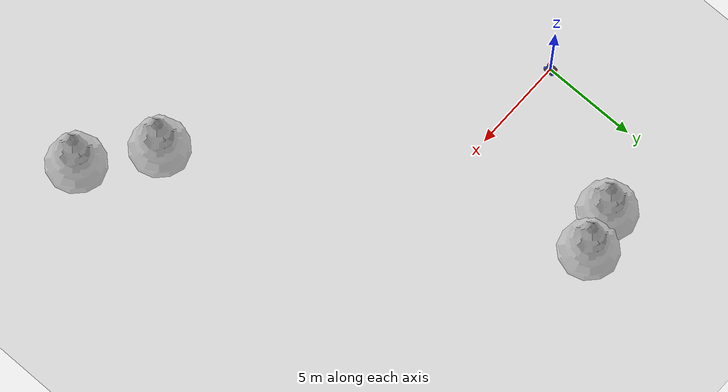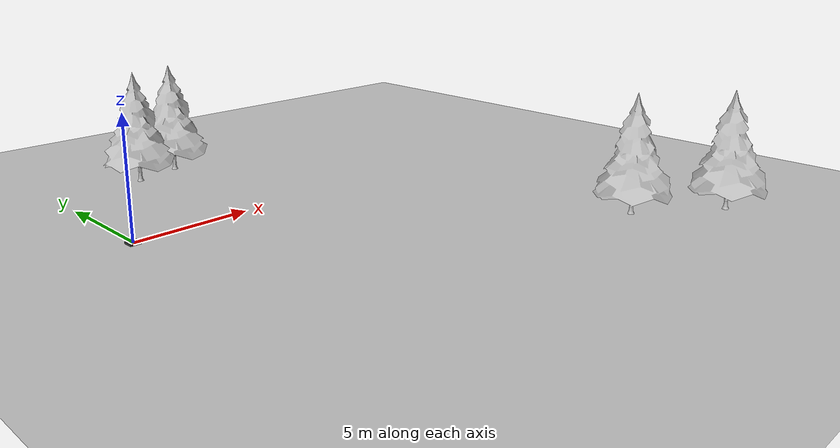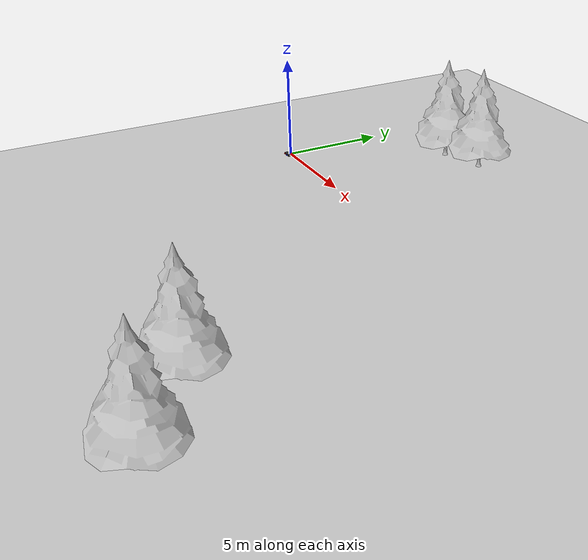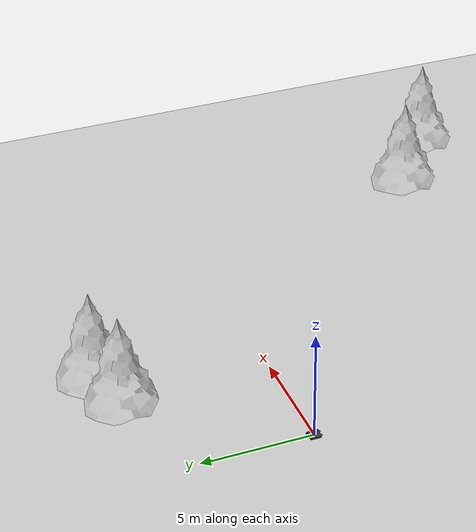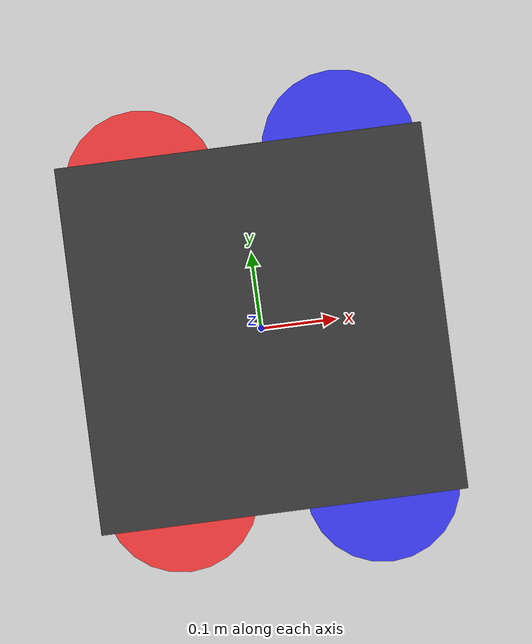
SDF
<sdf version="1.4">
 <world name="vrc_task_1">
  <scene><ambient>0.4 0.4 0.4 1</ambient><background>0.7 0.7 0.7 1</background><shadows>1</shadows></scene>
  <physics name="default_physics" default="0" type="ode">
   <gravity>0 0 -9.8066</gravity>
   <ode>
    <solver>
     <type>quick</type>
     <iters>10</iters>
     <sor>1.0</sor>
     <use_dynamic_moi_rescaling>0</use_dynamic_moi_rescaling>
    </solver>
    <constraints>
     <cfm>0</cfm>
     <erp>0.2</erp>
     <contact_max_correcting_vel>100</contact_max_correcting_vel>
     <contact_surface_layer>0.001</contact_surface_layer>
    </constraints>
   </ode>
   <max_step_size>0.004</max_step_size>
   <real_time_factor>1</real_time_factor>
   <real_time_update_rate>250</real_time_update_rate>
   <magnetic_field>6e-06 2.3e-05 -4.2e-05</magnetic_field>
  </physics>
  <light name="sun" type="directional">
   <pose>0 0 10 0 0 0</pose>
   <diffuse>0.8 0.8 0.8 1</diffuse>
   <specular>0.2 0.2 0.2 1</specular>
   <attenuation>
    <range>1000</range>
    <constant>0.9</constant>
    <linear>0.01</linear>
    <quadratic>0.001</quadratic>
   </attenuation>
   <direction>-0.5 0.1 -0.9</direction>
  </light>
  <include><uri>model://drone_center_groundplane</uri></include>
  <include><name>pine_tree_1</name><uri>model://pine_tree</uri><pose>4 7 0   0 0 0</pose></include>
  <include><name>pine_tree_2</name><uri>model://pine_tree</uri><pose>6.1 7.6 0   0 0 0</pose></include>
  <include><name>pine_tree_3</name><uri>model://pine_tree</uri><pose>19.3 -14 0   0 0 0</pose></include>
  <include><name>pine_tree_4</name><uri>model://pine_tree</uri><pose>16 -11.5 0  0 0 0</pose></include>
  <include><name>irirs_obs_avoid</name><uri>model://iris_stereo_camera</uri></include>
 </world>
</sdf>

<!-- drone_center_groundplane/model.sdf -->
<sdf version="1.4">
   <model name="drone_center_groundplane">
      <static>true</static>
      <link name="link">
         <collision name="collision">
            <geometry>
               <plane>
                  <normal>0 0 1</normal>
                  <size>394 390</size>
               </plane>
            </geometry>
            <surface>
               <friction>
                  <ode>
                     <mu>100</mu>
                     <mu2>50</mu2>
                  </ode>
               </friction>
            </surface>
         </collision>
         <visual name="visual">
            <cast_shadows>false</cast_shadows>
            <geometry>
               <plane>
                  <normal>0 0 1</normal>
                  <size>210 165</size>
               </plane>
            </geometry>
            <material>
               <script>
                  <uri>model://drone_center_groundplane/materials/scripts/</uri>
                  <uri>model://drone_center_groundplane/materials/textures/</uri>
                  <name>DroneCenterGroundPlane/Image</name>
               </script>
            </material>
         </visual>
      </link>
   </model>
</sdf>

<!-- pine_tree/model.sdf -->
<sdf version="1.6">
  <model name="pine_tree">
    <static>true</static>
    <link name="link">
      <collision name="collision">
        <geometry>
          <mesh>
            <uri>file://isr-testbed/pine_tree/meshes/pine_tree.dae</uri>
          </mesh>
        </geometry>
      </collision>
      <visual name="branch">
        <geometry>
          <mesh>
            <uri>file://isr-testbed/pine_tree/meshes/pine_tree.dae</uri>
            <submesh>
              <name>Branch</name>
            </submesh>
          </mesh>
        </geometry>
        <material>
          <script>
            <uri>file://isr-testbed/pine_tree/materials/scripts/</uri>
            <uri>file://isr-testbed/pine_tree/materials/textures/</uri>
            <name>PineTree/Branch</name>
          </script>
        </material>
      </visual>
      <visual name="bark">
        <geometry>
          <mesh>
            <uri>file://isr-testbed/pine_tree/meshes/pine_tree.dae</uri>
            <submesh>
              <name>Bark</name>
            </submesh>
          </mesh>
        </geometry>
        <material>
          <script>
            <uri>file://isr-testbed/pine_tree/materials/scripts/</uri>
            <uri>file://isr-testbed/pine_tree/materials/textures/</uri>
            <name>PineTree/Bark</name>
          </script>
        </material>
      </visual>
    </link>
  </model>
</sdf>

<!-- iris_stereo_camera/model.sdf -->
<sdf version="1.9">
  <model name='iris_stereo_camera'>
    <pose>0 0 0.15 0 0 0</pose>

    <link name='base_link'>
      <inertial>
        <mass>1.5</mass>
        <inertia>
          <ixx>0.029125</ixx>
          <ixy>0</ixy>
          <ixz>0</ixz>
          <iyy>0.029125</iyy>
          <iyz>0</iyz>
          <izz>0.055225</izz>
        </inertia>
      </inertial>

      <visual name='visual'>
        <geometry>
          <box>
            <size>0.47 0.47 0.11</size>
          </box>
        </geometry>
        <material>
          <ambient>0.2 0.2 0.2 1</ambient>
          <diffuse>0.2 0.2 0.2 1</diffuse>
          <specular>0.1 0.1 0.1 1</specular>
        </material>
      </visual>

      <collision name='collision'>
        <geometry>
          <box>
            <size>0.47 0.47 0.11</size>
          </box>
        </geometry>
      </collision>
    </link>

    <!-- Stereo Camera Link -->
    <link name='stereo_camera_link'>
      <pose relative_to='base_link'>0.1 0 0 0 0 0</pose>
      <inertial>
        <mass>0.015</mass>
        <inertia>
          <ixx>1e-6</ixx>
          <ixy>0</ixy>
          <ixz>0</ixz>
          <iyy>1e-6</iyy>
          <iyz>0</iyz>
          <izz>1e-6</izz>
        </inertia>
      </inertial>
    </link>

    <joint name='stereo_camera_joint' type='fixed'>
      <parent>base_link</parent>
      <child>stereo_camera_link</child>
    </joint>

    <!-- Left Camera -->
    <link name='left_camera_link'>
      <pose relative_to='stereo_camera_link'>0 0.035 0 0 0 0</pose>
      <inertial>
        <mass>0.01</mass>
        <inertia>
          <ixx>1e-6</ixx>
          <ixy>0</ixy>
          <ixz>0</ixz>
          <iyy>1e-6</iyy>
          <iyz>0</iyz>
          <izz>1e-6</izz>
        </inertia>
      </inertial>

      <sensor name='left_camera' type='camera'>
        <camera>
          <horizontal_fov>1.047</horizontal_fov>
          <image>
            <width>640</width>
            <height>480</height>
            <format>R8G8B8</format>
          </image>
          <clip>
            <near>0.1</near>
            <far>100</far>
          </clip>
          <distortion>
            <k1>0.0</k1>
            <k2>0.0</k2>
            <k3>0.0</k3>
            <p1>0.0</p1>
            <p2>0.0</p2>
            <center>0.5 0.5</center>
          </distortion>
        </camera>
        <always_on>1</always_on>
        <update_rate>30</update_rate>
        <visualize>true</visualize>
        <topic>/left_camera</topic>
      </sensor>
    </link>

    <joint name='left_camera_joint' type='fixed'>
      <parent>stereo_camera_link</parent>
      <child>left_camera_link</child>
    </joint>

    <!-- Right Camera -->
    <link name='right_camera_link'>
      <pose relative_to='stereo_camera_link'>0 -0.035 0 0 0 0</pose>
      <inertial>
        <mass>0.01</mass>
        <inertia>
          <ixx>1e-6</ixx>
          <ixy>0</ixy>
          <ixz>0</ixz>
          <iyy>1e-6</iyy>
          <iyz>0</iyz>
          <izz>1e-6</izz>
        </inertia>
      </inertial>

      <sensor name='right_camera' type='camera'>
        <camera>
          <horizontal_fov>1.047</horizontal_fov>
          <image>
            <width>640</width>
            <height>480</height>
            <format>R8G8B8</format>
          </image>
          <clip>
            <near>0.1</near>
            <far>100</far>
          </clip>
          <distortion>
            <k1>0.0</k1>
            <k2>0.0</k2>
            <k3>0.0</k3>
            <p1>0.0</p1>
            <p2>0.0</p2>
            <center>0.5 0.5</center>
          </distortion>
        </camera>
        <always_on>1</always_on>
        <update_rate>30</update_rate>
        <visualize>true</visualize>
        <topic>/right_camera</topic>
      </sensor>
    </link>

    <joint name='right_camera_joint' type='fixed'>
      <parent>stereo_camera_link</parent>
      <child>right_camera_link</child>
    </joint>

    <!-- IMU Sensor -->
    <link name='imu_link'>
      <pose relative_to='base_link'>0 0 0 0 0 0</pose>
      <inertial>
        <mass>0.01</mass>
        <inertia>
          <ixx>1e-6</ixx>
          <ixy>0</ixy>
          <ixz>0</ixz>
          <iyy>1e-6</iyy>
          <iyz>0</iyz>
          <izz>1e-6</izz>
        </inertia>
      </inertial>

      <sensor name='imu_sensor' type='imu'>
        <always_on>1</always_on>
        <update_rate>250</update_rate>
        <topic>/imu</topic>
        <imu>
          <angular_velocity>
            <x>
              <noise type="gaussian">
                <mean>0.0</mean>
                <stddev>2e-4</stddev>
              </noise>
            </x>
            <y>
              <noise type="gaussian">
                <mean>0.0</mean>
                <stddev>2e-4</stddev>
              </noise>
            </y>
            <z>
              <noise type="gaussian">
                <mean>0.0</mean>
                <stddev>2e-4</stddev>
              </noise>
            </z>
          </angular_velocity>
          <linear_acceleration>
            <x>
              <noise type="gaussian">
                <mean>0.0</mean>
                <stddev>1.7e-2</stddev>
              </noise>
            </x>
            <y>
              <noise type="gaussian">
                <mean>0.0</mean>
                <stddev>1.7e-2</stddev>
              </noise>
            </y>
            <z>
              <noise type="gaussian">
                <mean>0.0</mean>
                <stddev>1.7e-2</stddev>
              </noise>
            </z>
          </linear_acceleration>
        </imu>
      </sensor>
    </link>

    <joint name='imu_joint' type='fixed'>
      <parent>base_link</parent>
      <child>imu_link</child>
    </joint>

    <!-- Propellers (simplified) -->
    <link name='rotor_0'>
      <pose relative_to='base_link'>0.13 -0.22 0.023 0 0 0</pose>
      <inertial>
        <mass>0.005</mass>
        <inertia>
          <ixx>9.75e-7</ixx>
          <ixy>0</ixy>
          <ixz>0</ixz>
          <iyy>0.000166704</iyy>
          <iyz>0</iyz>
          <izz>0.000167604</izz>
        </inertia>
      </inertial>
      <visual name='visual'>
        <geometry>
          <cylinder>
            <radius>0.1</radius>
            <length>0.005</length>
          </cylinder>
        </geometry>
        <material>
          <ambient>0 0 1 0.7</ambient>
          <diffuse>0 0 1 0.7</diffuse>
        </material>
      </visual>
    </link>

    <joint name='rotor_0_joint' type='revolute'>
      <parent>base_link</parent>
      <child>rotor_0</child>
      <axis>
        <xyz>0 0 1</xyz>
        <limit>
          <lower>-1e+12</lower>
          <upper>1e+12</upper>
        </limit>
      </axis>
    </joint>

    <link name='rotor_1'>
      <pose relative_to='base_link'>-0.13 0.20 0.023 0 0 0</pose>
      <inertial>
        <mass>0.005</mass>
        <inertia>
          <ixx>9.75e-7</ixx>
          <ixy>0</ixy>
          <ixz>0</ixz>
          <iyy>0.000166704</iyy>
          <iyz>0</iyz>
          <izz>0.000167604</izz>
        </inertia>
      </inertial>
      <visual name='visual'>
        <geometry>
          <cylinder>
            <radius>0.1</radius>
            <length>0.005</length>
          </cylinder>
        </geometry>
        <material>
          <ambient>1 0 0 0.7</ambient>
          <diffuse>1 0 0 0.7</diffuse>
        </material>
      </visual>
    </link>

    <joint name='rotor_1_joint' type='revolute'>
      <parent>base_link</parent>
      <child>rotor_1</child>
      <axis>
        <xyz>0 0 1</xyz>
        <limit>
          <lower>-1e+12</lower>
          <upper>1e+12</upper>
        </limit>
      </axis>
    </joint>

    <link name='rotor_2'>
      <pose relative_to='base_link'>0.13 0.22 0.023 0 0 0</pose>
      <inertial>
        <mass>0.005</mass>
        <inertia>
          <ixx>9.75e-7</ixx>
          <ixy>0</ixy>
          <ixz>0</ixz>
          <iyy>0.000166704</iyy>
          <iyz>0</iyz>
          <izz>0.000167604</izz>
        </inertia>
      </inertial>
      <visual name='visual'>
        <geometry>
          <cylinder>
            <radius>0.1</radius>
            <length>0.005</length>
          </cylinder>
        </geometry>
        <material>
          <ambient>0 0 1 0.7</ambient>
          <diffuse>0 0 1 0.7</diffuse>
        </material>
      </visual>
    </link>

    <joint name='rotor_2_joint' type='revolute'>
      <parent>base_link</parent>
      <child>rotor_2</child>
      <axis>
        <xyz>0 0 1</xyz>
        <limit>
          <lower>-1e+12</lower>
          <upper>1e+12</upper>
        </limit>
      </axis>
    </joint>

    <link name='rotor_3'>
      <pose relative_to='base_link'>-0.13 -0.20 0.023 0 0 0</pose>
      <inertial>
        <mass>0.005</mass>
        <inertia>
          <ixx>9.75e-7</ixx>
          <ixy>0</ixy>
          <ixz>0</ixz>
          <iyy>0.000166704</iyy>
          <iyz>0</iyz>
          <izz>0.000167604</izz>
        </inertia>
      </inertial>
      <visual name='visual'>
        <geometry>
          <cylinder>
            <radius>0.1</radius>
            <length>0.005</length>
          </cylinder>
        </geometry>
        <material>
          <ambient>1 0 0 0.7</ambient>
          <diffuse>1 0 0 0.7</diffuse>
        </material>
      </visual>
    </link>

    <joint name='rotor_3_joint' type='revolute'>
      <parent>base_link</parent>
      <child>rotor_3</child>
      <axis>
        <xyz>0 0 1</xyz>
        <limit>
          <lower>-1e+12</lower>
          <upper>1e+12</upper>
        </limit>
      </axis>
    </joint>

    <!-- Plugins -->
    <plugin
      filename="gz-sim-multicopter-motor-model-system"
      name="gz::sim::systems::MulticopterMotorModel">
      <robotNamespace>model/iris_stereo_camera</robotNamespace>
      <jointName>rotor_0_joint</jointName>
      <linkName>rotor_0</linkName>
      <turningDirection>ccw</turningDirection>
      <timeConstantUp>0.0125</timeConstantUp>
      <timeConstantDown>0.025</timeConstantDown>
      <maxRotVelocity>800</maxRotVelocity>
      <motorConstant>8.54858e-06</motorConstant>
      <momentConstant>0.016</momentConstant>
      <commandSubTopic>command/motor_speed</commandSubTopic>
      <motorNumber>0</motorNumber>
      <rotorDragCoefficient>8.06428e-05</rotorDragCoefficient>
      <rollingMomentCoefficient>1e-06</rollingMomentCoefficient>
      <motorSpeedPubTopic>motor_speed/0</motorSpeedPubTopic>
      <rotorVelocitySlowdownSim>10</rotorVelocitySlowdownSim>
    </plugin>

    <plugin
      filename="gz-sim-multicopter-motor-model-system"
      name="gz::sim::systems::MulticopterMotorModel">
      <robotNamespace>model/iris_stereo_camera</robotNamespace>
      <jointName>rotor_1_joint</jointName>
      <linkName>rotor_1</linkName>
      <turningDirection>ccw</turningDirection>
      <timeConstantUp>0.0125</timeConstantUp>
      <timeConstantDown>0.025</timeConstantDown>
      <maxRotVelocity>800</maxRotVelocity>
      <motorConstant>8.54858e-06</motorConstant>
      <momentConstant>0.016</momentConstant>
      <commandSubTopic>command/motor_speed</commandSubTopic>
      <motorNumber>1</motorNumber>
      <rotorDragCoefficient>8.06428e-05</rotorDragCoefficient>
      <rollingMomentCoefficient>1e-06</rollingMomentCoefficient>
      <motorSpeedPubTopic>motor_speed/1</motorSpeedPubTopic>
      <rotorVelocitySlowdownSim>10</rotorVelocitySlowdownSim>
    </plugin>

    <plugin
      filename="gz-sim-multicopter-motor-model-system"
      name="gz::sim::systems::MulticopterMotorModel">
      <robotNamespace>model/iris_stereo_camera</robotNamespace>
      <jointName>rotor_2_joint</jointName>
      <linkName>rotor_2</linkName>
      <turningDirection>cw</turningDirection>
      <timeConstantUp>0.0125</timeConstantUp>
      <timeConstantDown>0.025</timeConstantDown>
      <maxRotVelocity>800</maxRotVelocity>
      <motorConstant>8.54858e-06</motorConstant>
      <momentConstant>0.016</momentConstant>
      <commandSubTopic>command/motor_speed</commandSubTopic>
      <motorNumber>2</motorNumber>
      <rotorDragCoefficient>8.06428e-05</rotorDragCoefficient>
      <rollingMomentCoefficient>1e-06</rollingMomentCoefficient>
      <motorSpeedPubTopic>motor_speed/2</motorSpeedPubTopic>
      <rotorVelocitySlowdownSim>10</rotorVelocitySlowdownSim>
    </plugin>

    <plugin
      filename="gz-sim-multicopter-motor-model-system"
      name="gz::sim::systems::MulticopterMotorModel">
      <robotNamespace>model/iris_stereo_camera</robotNamespace>
      <jointName>rotor_3_joint</jointName>
      <linkName>rotor_3</linkName>
      <turningDirection>cw</turningDirection>
      <timeConstantUp>0.0125</timeConstantUp>
      <timeConstantDown>0.025</timeConstantDown>
      <maxRotVelocity>800</maxRotVelocity>
      <motorConstant>8.54858e-06</motorConstant>
      <momentConstant>0.016</momentConstant>
      <commandSubTopic>command/motor_speed</commandSubTopic>
      <motorNumber>3</motorNumber>
      <rotorDragCoefficient>8.06428e-05</rotorDragCoefficient>
      <rollingMomentCoefficient>1e-06</rollingMomentCoefficient>
      <motorSpeedPubTopic>motor_speed/3</motorSpeedPubTopic>
      <rotorVelocitySlowdownSim>10</rotorVelocitySlowdownSim>
    </plugin>

  </model>
</sdf>
